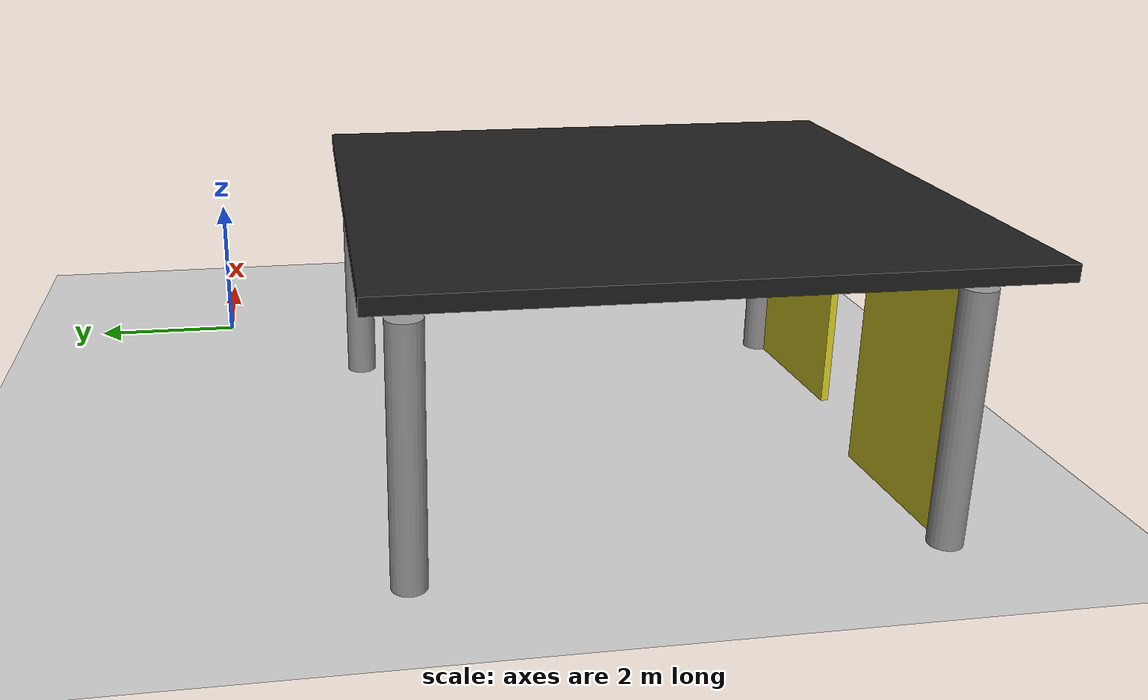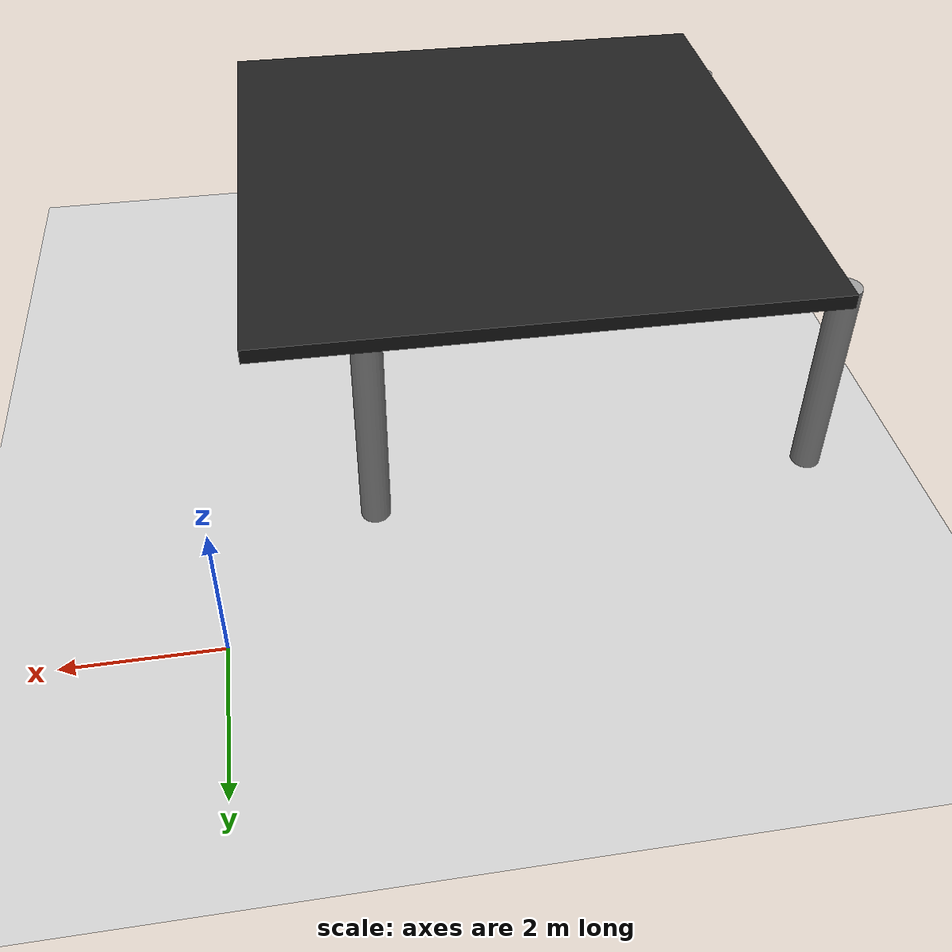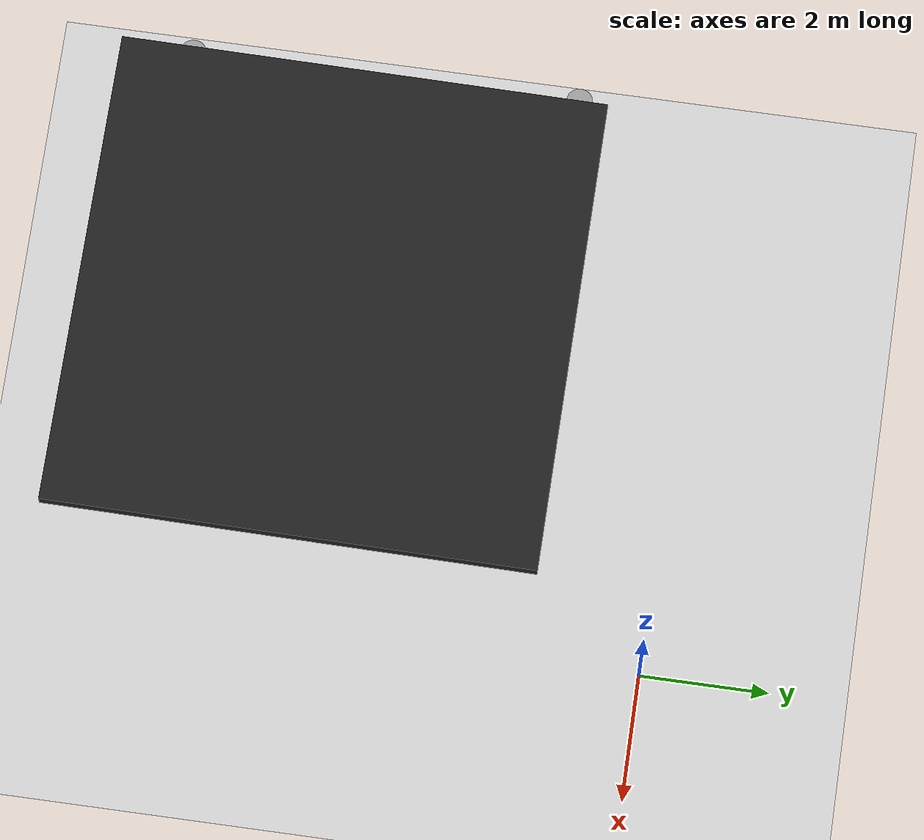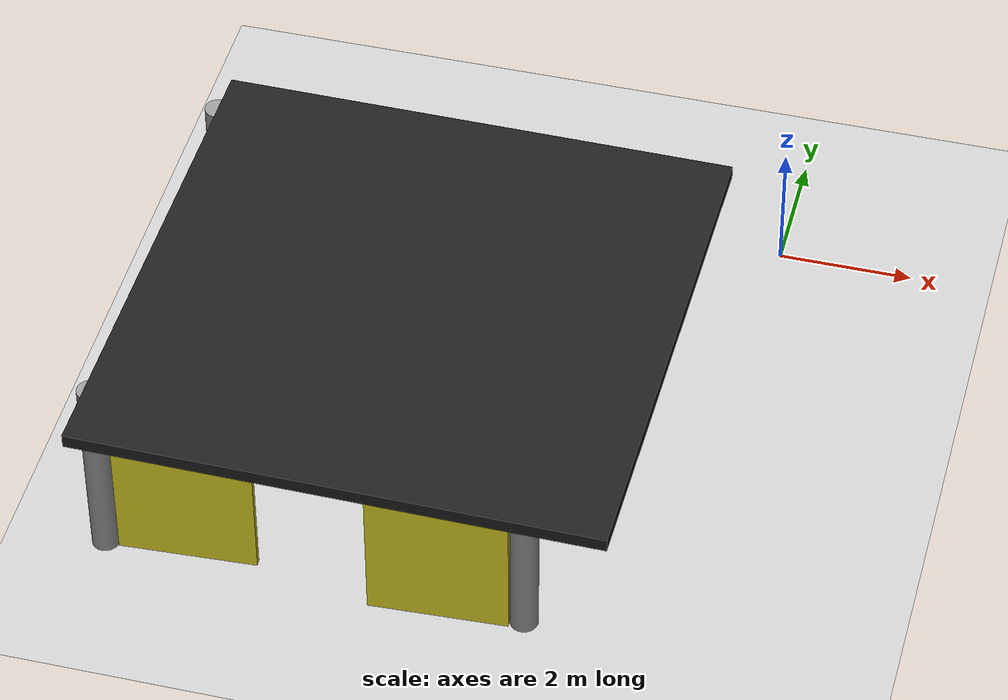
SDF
<sdf version="1.4">
 <world name="default">
  <light name="sun" type="directional">
   <pose>0 0 10 0 -0 0</pose>
   <diffuse>0.8 0.8 0.8 1</diffuse>
   <specular>0.2 0.2 0.2 1</specular>
   <attenuation>
    <range>1000</range>
    <constant>0.9</constant>
    <linear>0.01</linear>
    <quadratic>0.001</quadratic>
   </attenuation>
   <direction>-0.5 0.1 -0.9</direction>
  </light>
  <model name="ground_plane">
   <static>1</static>
   <link name="link">
    <collision name="collision">
     <geometry><plane><normal>0 0 1</normal><size>100 100</size></plane></geometry>
     <surface><friction><ode><mu>100</mu><mu2>50</mu2></ode></friction></surface>
    </collision>
    <visual name="visual">
     <cast_shadows>0</cast_shadows>
     <geometry><plane><normal>0 0 1</normal><size>100 100</size></plane></geometry>
     <material>
      <script><uri>file://media/materials/scripts/gazebo.material</uri><name>Gazebo/Grey</name></script>
     </material>
    </visual>
    <velocity_decay><linear>0</linear><angular>0</angular></velocity_decay>
   </link>
  </model>
  <physics type="ode">
   <max_step_size>0.001</max_step_size>
   <real_time_factor>1</real_time_factor>
   <real_time_update_rate>1000</real_time_update_rate>
   <gravity>0 0 -9.8</gravity>
  </physics>
  <scene><ambient>0.4 0.4 0.4 1</ambient><background>0.7 0.7 0.7 1</background><shadows>1</shadows></scene>
  <model name="unit_cylinder_1">
   <pose>-1.97988 -1.96391 1.49969 -1.1e-05 -8e-06 -0.005011</pose>
   <link name="link">
    <inertial>
     <mass>1</mass>
     <inertia><ixx>1</ixx><ixy>0</ixy><ixz>0</ixz><iyy>1</iyy><iyz>0</iyz><izz>1</izz></inertia>
    </inertial>
    <collision name="collision">
     <geometry><cylinder><radius>0.2</radius><length>3</length></cylinder></geometry>
    </collision>
    <visual name="visual">
     <geometry><cylinder><radius>0.2</radius><length>3</length></cylinder></geometry>
     <material>
      <script><uri>file://media/materials/scripts/gazebo.material</uri><name>Gazebo/Grey</name></script>
     </material>
    </visual>
    <velocity_decay><linear>0</linear><angular>0</angular></velocity_decay>
   </link>
   <static>0</static>
  </model>
  <model name="unit_cylinder_1_1">
   <pose>-8.03965 -8.03331 1.5 0 -0 0.0026</pose>
   <link name="link">
    <inertial>
     <mass>1</mass>
     <inertia><ixx>1</ixx><ixy>0</ixy><ixz>0</ixz><iyy>1</iyy><iyz>0</iyz><izz>1</izz></inertia>
    </inertial>
    <collision name="collision">
     <geometry><cylinder><radius>0.2</radius><length>3</length></cylinder></geometry>
    </collision>
    <visual name="visual">
     <geometry><cylinder><radius>0.2</radius><length>3</length></cylinder></geometry>
     <material>
      <script><uri>file://media/materials/scripts/gazebo.material</uri><name>Gazebo/Grey</name></script>
     </material>
    </visual>
    <velocity_decay><linear>0</linear><angular>0</angular></velocity_decay>
   </link>
   <static>0</static>
  </model>
  <model name="unit_cylinder_4">
   <pose>-1.95909 -8.07447 1.49999 0 -0 0.000348</pose>
   <link name="link">
    <inertial>
     <mass>1</mass>
     <inertia><ixx>1</ixx><ixy>0</ixy><ixz>0</ixz><iyy>1</iyy><iyz>0</iyz><izz>1</izz></inertia>
    </inertial>
    <collision name="collision">
     <geometry><cylinder><radius>0.2</radius><length>3</length></cylinder></geometry>
    </collision>
    <visual name="visual">
     <geometry><cylinder><radius>0.2</radius><length>3</length></cylinder></geometry>
     <material>
      <script><uri>file://media/materials/scripts/gazebo.material</uri><name>Gazebo/Grey</name></script>
     </material>
    </visual>
    <velocity_decay><linear>0</linear><angular>0</angular></velocity_decay>
   </link>
   <static>0</static>
  </model>
  <model name="unit_cylinder_7">
   <pose>-8.06832 -2.0673 1.49992 -2e-06 -1e-06 -0.001139</pose>
   <link name="link">
    <inertial>
     <mass>1</mass>
     <inertia><ixx>1</ixx><ixy>0</ixy><ixz>0</ixz><iyy>1</iyy><iyz>0</iyz><izz>1</izz></inertia>
    </inertial>
    <collision name="collision">
     <geometry><cylinder><radius>0.2</radius><length>3</length></cylinder></geometry>
    </collision>
    <visual name="visual">
     <geometry><cylinder><radius>0.2</radius><length>3</length></cylinder></geometry>
     <material>
      <script><uri>file://media/materials/scripts/gazebo.material</uri><name>Gazebo/Grey</name></script>
     </material>
    </visual>
    <velocity_decay><linear>0</linear><angular>0</angular></velocity_decay>
   </link>
   <static>0</static>
  </model>
  <model name="unit_box_2_0">
   <pose>-4.27912 -5.41622 3.09894 -0.000224 0.000138 -0.009885</pose>
   <link name="link">
    <inertial>
     <mass>1</mass>
     <inertia><ixx>1</ixx><ixy>0</ixy><ixz>0</ixz><iyy>1</iyy><iyz>0</iyz><izz>1</izz></inertia>
    </inertial>
    <collision name="collision"><geometry><box><size>7.5 7.5 0.2</size></box></geometry></collision>
    <visual name="visual">
     <geometry><box><size>7.5 7.5 0.2</size></box></geometry>
     <material>
      <script><uri>file://media/materials/scripts/gazebo.material</uri><name>Gazebo/Black</name></script>
     </material>
    </visual>
    <velocity_decay><linear>0</linear><angular>0</angular></velocity_decay>
   </link>
   <static>0</static>
  </model>
  <model name="unit_box_1">
   <pose>-6.8406 -7.97703 1.49996 3e-06 2.11758e-22 1.62353</pose>
   <link name="link">
    <inertial>
     <mass>1</mass>
     <inertia><ixx>1</ixx><ixy>0</ixy><ixz>0</ixz><iyy>1</iyy><iyz>0</iyz><izz>1</izz></inertia>
    </inertial>
    <collision name="collision"><geometry><box><size>0.1 2 3</size></box></geometry></collision>
    <visual name="visual">
     <geometry><box><size>0.1 2 3</size></box></geometry>
     <material>
      <script><uri>file://media/materials/scripts/gazebo.material</uri><name>Gazebo/Yellow</name></script>
     </material>
    </visual>
    <velocity_decay><linear>0</linear><angular>0</angular></velocity_decay>
   </link>
   <static>0</static>
  </model>
  <model name="unit_box_2">
   <pose>-3.15071 -8.21654 1.49985 6.35275e-22 -3e-06 -1.52228</pose>
   <link name="link">
    <inertial>
     <mass>1</mass>
     <inertia><ixx>1</ixx><ixy>0</ixy><ixz>0</ixz><iyy>1</iyy><iyz>0</iyz><izz>1</izz></inertia>
    </inertial>
    <collision name="collision"><geometry><box><size>0.1 2 3</size></box></geometry></collision>
    <visual name="visual">
     <geometry><box><size>0.1 2 3</size></box></geometry>
     <material>
      <script><uri>file://media/materials/scripts/gazebo.material</uri><name>Gazebo/Yellow</name></script>
     </material>
    </visual>
    <velocity_decay><linear>0</linear><angular>0</angular></velocity_decay>
   </link>
   <static>0</static>
  </model>
 </world>
</sdf>
